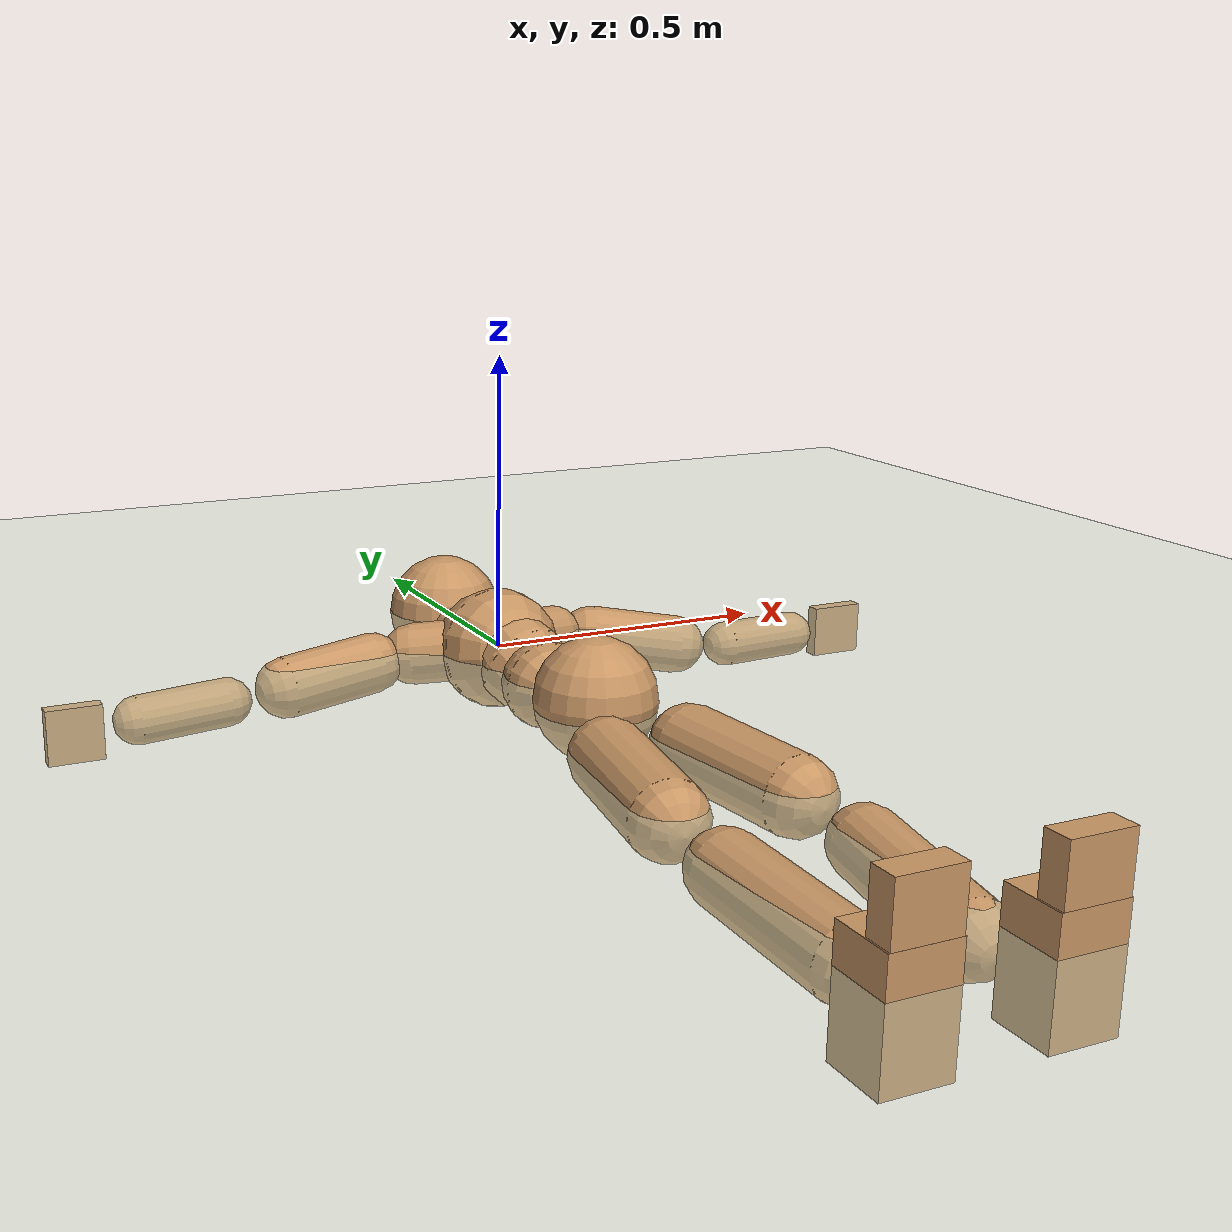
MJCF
<mujoco model="humanoid">
  <option timestep=".0001">
    <flag energy="enable"/>
  </option>
  <compiler coordinate="local"/>
  <default>
    <joint damping="0.0" armature="0.01" stiffness="0.0" limited="true"/>
    <geom conaffinity="1" condim="3" contype="7" margin="0.001" rgba="0.8 0.6 .4 1"/>
  </default>
  <asset>
    <texture type="skybox" builtin="gradient" rgb1=".4 .5 .6" rgb2="0 0 0" width="100" height="100"/>
    <texture builtin="flat" height="1278" mark="cross" markrgb="1 1 1" name="texgeom" random="0.01" rgb1="0.8 0.6 0.4" rgb2="0.8 0.6 0.4" type="cube" width="127"/>
    <texture builtin="checker" height="100" name="texplane" rgb1="0 0 0" rgb2="0.8 0.8 0.8" type="2d" width="100"/>
    <material name="MatPlane" reflectance="0.5" shininess="1" specular="1" texrepeat="60 60" texture="texplane"/>
    <material name="geom" texture="texgeom" texuniform="true"/>
  </asset>
  <worldbody>
    <light cutoff="100" diffuse="1 1 1" dir="-0 0 -1.3" directional="true" exponent="1" pos="0 0 1.3" specular=".1 .1 .1"/>
    <geom conaffinity="1" condim="3" name="floor" pos="0 0 0" rgba="0.8 0.9 0.8 1" size="100 100 .2" type="plane" material="MatPlane"/>
    <body name="Pelvis" pos="0.0031 -0.3514 0.012">
      <freejoint name="Pelvis"/>
      <geom type="sphere" contype="1" conaffinity="1" density="4629.6296296296305" size="0.0985" pos="0.0000 0.0000 0.0000" name="Pelvis"/>
      <body name="L_Hip" pos="0.0582 -0.0928 -0.026">
        <joint name="L_Hip_x" type="hinge" pos="0 0 0" axis="1 0 0" user="250 2.5 1 500 10 2" armature="0.01" range="-90.0000 90.0000" damping="0" stiffness="0"/>
        <joint name="L_Hip_y" type="hinge" pos="0 0 0" axis="0 1 0" user="250 2.5 1 500 10 2" armature="0.01" range="-90.0000 90.0000" damping="0" stiffness="0"/>
        <joint name="L_Hip_z" type="hinge" pos="0 0 0" axis="0 0 1" user="250 2.5 1 500 10 2" armature="0.01" range="-90.0000 90.0000" damping="0" stiffness="0"/>
        <geom type="capsule" contype="1" conaffinity="1" density="2040.816327" fromto="0.0109 -0.0758 -0.0019 0.0438 -0.3030 -0.0075" size="0.0605"/>
        <body name="L_Knee" pos="0.0547 -0.3788 -0.0094">
          <joint name="L_Knee_x" type="hinge" pos="0 0 0" axis="1 0 0" user="250 2.5 1 500 10 2" armature="0.01" range="-180.0000 180.0000" damping="0" stiffness="0"/>
          <joint name="L_Knee_y" type="hinge" pos="0 0 0" axis="0 1 0" user="250 2.5 1 500 10 2" armature="0.01" range="-5.6250 5.6250" damping="0" stiffness="0"/>
          <joint name="L_Knee_z" type="hinge" pos="0 0 0" axis="0 0 1" user="250 2.5 1 500 10 2" armature="0.01" range="-5.6250 5.6250" damping="0" stiffness="0"/>
          <geom type="capsule" contype="1" conaffinity="1" density="1234.567901" fromto="-0.0087 -0.0806 -0.0064 -0.0348 -0.3224 -0.0255" size="0.0533"/>
          <body name="L_Ankle" pos="-0.0435 -0.4031 -0.0319">
            <joint name="L_Ankle_x" type="hinge" pos="0 0 0" axis="1 0 0" user="150 2.5 1 500 10 2" armature="0.01" range="-90.0000 90.0000" damping="0" stiffness="0"/>
            <joint name="L_Ankle_y" type="hinge" pos="0 0 0" axis="0 1 0" user="150 2.5 1 500 10 2" armature="0.01" range="-90.0000 90.0000" damping="0" stiffness="0"/>
            <joint name="L_Ankle_z" type="hinge" pos="0 0 0" axis="0 0 1" user="150 2.5 1 500 10 2" armature="0.01" range="-90.0000 90.0000" damping="0" stiffness="0"/>
            <geom type="box" density="445.819015" pos="0.0407 -0.0287 0.0232" size="0.0498 0.0464 0.0857" quat="1.0000 0.0000 0.0000 0.0000"/>
            <body name="L_Toe" pos="0.0473 -0.058 0.1182">
              <joint name="L_Toe_x" type="hinge" pos="0 0 0" axis="1 0 0" user="150 1 1 500 1 1" armature="0.01" range="-90.0000 90.0000" damping="0" stiffness="0"/>
              <joint name="L_Toe_y" type="hinge" pos="0 0 0" axis="0 1 0" user="150 1 1 500 1 1" armature="0.01" range="-45.0000 45.0000" damping="0" stiffness="0"/>
              <joint name="L_Toe_z" type="hinge" pos="0 0 0" axis="0 0 1" user="150 1 1 500 1 1" armature="0.01" range="-45.0000 45.0000" damping="0" stiffness="0"/>
              <geom type="box" density="421.767577" pos="-0.0065 0.0034 0.0256" size="0.0478 0.0205 0.0495" quat="1.0000 0.0000 0.0000 0.0000"/>
            </body>
          </body>
        </body>
      </body>
      <body name="R_Hip" pos="-0.0633 -0.1039 -0.0213">
        <joint name="R_Hip_x" type="hinge" pos="0 0 0" axis="1 0 0" user="250 2.5 1 500 10 2" armature="0.01" range="-90.0000 90.0000" damping="0" stiffness="0"/>
        <joint name="R_Hip_y" type="hinge" pos="0 0 0" axis="0 1 0" user="250 2.5 1 500 10 2" armature="0.01" range="-90.0000 90.0000" damping="0" stiffness="0"/>
        <joint name="R_Hip_z" type="hinge" pos="0 0 0" axis="0 0 1" user="250 2.5 1 500 10 2" armature="0.01" range="-90.0000 90.0000" damping="0" stiffness="0"/>
        <geom type="capsule" contype="1" conaffinity="1" density="2040.816327" fromto="-0.0088 -0.0725 -0.0034 -0.0354 -0.2899 -0.0135" size="0.0598"/>
        <body name="R_Knee" pos="-0.0442 -0.3624 -0.0168">
          <joint name="R_Knee_x" type="hinge" pos="0 0 0" axis="1 0 0" user="250 2.5 1 500 10 2" armature="0.01" range="-180.0000 180.0000" damping="0" stiffness="0"/>
          <joint name="R_Knee_y" type="hinge" pos="0 0 0" axis="0 1 0" user="250 2.5 1 500 10 2" armature="0.01" range="-5.6250 5.6250" damping="0" stiffness="0"/>
          <joint name="R_Knee_z" type="hinge" pos="0 0 0" axis="0 0 1" user="250 2.5 1 500 10 2" armature="0.01" range="-5.6250 5.6250" damping="0" stiffness="0"/>
          <geom type="capsule" contype="1" conaffinity="1" density="1234.567901" fromto="0.0031 -0.0821 -0.0040 0.0123 -0.3286 -0.0162" size="0.0551"/>
          <body name="R_Ankle" pos="0.0154 -0.4107 -0.0202">
            <joint name="R_Ankle_x" type="hinge" pos="0 0 0" axis="1 0 0" user="150 1 1 500 10 2" armature="0.01" range="-90.0000 90.0000" damping="0" stiffness="0"/>
            <joint name="R_Ankle_y" type="hinge" pos="0 0 0" axis="0 1 0" user="150 1 1 500 10 2" armature="0.01" range="-90.0000 90.0000" damping="0" stiffness="0"/>
            <joint name="R_Ankle_z" type="hinge" pos="0 0 0" axis="0 0 1" user="150 1 1 500 10 2" armature="0.01" range="-90.0000 90.0000" damping="0" stiffness="0"/>
            <geom type="box" density="445.807856" pos="-0.0243 -0.0263 0.0142" size="0.0498 0.0464 0.0857" quat="1.0000 0.0000 0.0000 0.0000"/>
            <body name="R_Toe" pos="-0.0388 -0.0583 0.119">
              <joint name="R_Toe_x" type="hinge" pos="0 0 0" axis="1 0 0" user="150 1 1 500 1 1" armature="0.01" range="-90.0000 90.0000" damping="0" stiffness="0"/>
              <joint name="R_Toe_y" type="hinge" pos="0 0 0" axis="0 1 0" user="150 1 1 500 1 1" armature="0.01" range="-45.0000 45.0000" damping="0" stiffness="0"/>
              <joint name="R_Toe_z" type="hinge" pos="0 0 0" axis="0 0 1" user="150 1 1 500 1 1" armature="0.01" range="-45.0000 45.0000" damping="0" stiffness="0"/>
              <geom type="box" density="421.7641" pos="0.0145 0.0062 0.0158" size="0.0478 0.0205 0.0495" quat="1.0000 0.0000 0.0000 0.0000"/>
            </body>
          </body>
        </body>
      </body>
      <body name="Torso" pos="-0.0028 0.1099 -0.0276">
        <joint name="Torso_x" type="hinge" pos="0 0 0" axis="1 0 0" user="500 5 1 500 10 2" armature="0.01" range="-60.0000 60.0000" damping="0" stiffness="0"/>
        <joint name="Torso_y" type="hinge" pos="0 0 0" axis="0 1 0" user="500 5 1 500 10 2" armature="0.01" range="-60.0000 60.0000" damping="0" stiffness="0"/>
        <joint name="Torso_z" type="hinge" pos="0 0 0" axis="0 0 1" user="500 5 1 500 10 2" armature="0.01" range="-60.0000 60.0000" damping="0" stiffness="0"/>
        <geom type="capsule" contype="1" conaffinity="1" density="2040.816327" fromto="0.0043 0.0593 -0.0027 0.0052 0.0725 -0.0033" size="0.0719"/>
        <body name="Spine" pos="0.0094 0.1319 -0.0059">
          <joint name="Spine_x" type="hinge" pos="0 0 0" axis="1 0 0" user="500 5 1 500 10 2" armature="0.01" range="-60.0000 60.0000" damping="0" stiffness="0"/>
          <joint name="Spine_y" type="hinge" pos="0 0 0" axis="0 1 0" user="500 5 1 500 10 2" armature="0.01" range="-60.0000 60.0000" damping="0" stiffness="0"/>
          <joint name="Spine_z" type="hinge" pos="0 0 0" axis="0 0 1" user="500 5 1 500 10 2" armature="0.01" range="-60.0000 60.0000" damping="0" stiffness="0"/>
          <geom type="capsule" contype="1" conaffinity="1" density="2040.816327" fromto="-0.0051 0.0235 0.0128 -0.0062 0.0287 0.0156" size="0.076"/>
          <body name="Chest" pos="-0.0113 0.0522 0.0284">
            <joint name="Chest_x" type="hinge" pos="0 0 0" axis="1 0 0" user="500 5 1 500 10 2" armature="0.01" range="-60.0000 60.0000" damping="0" stiffness="0"/>
            <joint name="Chest_y" type="hinge" pos="0 0 0" axis="0 1 0" user="500 5 1 500 10 2" armature="0.01" range="-60.0000 60.0000" damping="0" stiffness="0"/>
            <joint name="Chest_z" type="hinge" pos="0 0 0" axis="0 0 1" user="500 5 1 500 10 2" armature="0.01" range="-60.0000 60.0000" damping="0" stiffness="0"/>
            <geom type="capsule" contype="1" conaffinity="1" density="2040.816327" fromto="-0.0020 0.0502 -0.0078 -0.0025 0.0613 -0.0096" size="0.1028"/>
            <body name="Neck" pos="-0.0122 0.1652 -0.0316">
              <joint name="Neck_x" type="hinge" pos="0 0 0" axis="1 0 0" user="150 1 1 250 50 4" armature="0.01" range="-180.0000 180.0000" damping="0" stiffness="0"/>
              <joint name="Neck_y" type="hinge" pos="0 0 0" axis="0 1 0" user="150 1 1 250 50 4" armature="0.01" range="-180.0000 180.0000" damping="0" stiffness="0"/>
              <joint name="Neck_z" type="hinge" pos="0 0 0" axis="0 0 1" user="150 1 1 250 50 4" armature="0.01" range="-180.0000 180.0000" damping="0" stiffness="0"/>
              <geom type="capsule" contype="1" conaffinity="1" density="1000" fromto="0.0050 0.0321 0.0041 0.0198 0.1284 0.0166" size="0.0419"/>
              <body name="Head" pos="0.0248 0.1605 0.0207">
                <joint name="Head_x" type="hinge" pos="0 0 0" axis="1 0 0" user="150 1 1 250 50 4" armature="0.01" range="-90.0000 90.0000" damping="0" stiffness="0"/>
                <joint name="Head_y" type="hinge" pos="0 0 0" axis="0 1 0" user="150 1 1 250 50 4" armature="0.01" range="-90.0000 90.0000" damping="0" stiffness="0"/>
                <joint name="Head_z" type="hinge" pos="0 0 0" axis="0 0 1" user="150 1 1 250 50 4" armature="0.01" range="-90.0000 90.0000" damping="0" stiffness="0"/>
                <geom type="sphere" contype="1" conaffinity="1" density="1000" size="0.1011" pos="0.0000 0.0000 0.0000" name="Head"/>
              </body>
            </body>
            <body name="L_Thorax" pos="0.0464 0.0849 -0.0072">
              <joint name="L_Thorax_x" type="hinge" pos="0 0 0" axis="1 0 0" user="200 2 1 500 50 4" armature="0.01" range="-180.0000 180.0000" damping="0" stiffness="0"/>
              <joint name="L_Thorax_y" type="hinge" pos="0 0 0" axis="0 1 0" user="200 2 1 500 50 4" armature="0.01" range="-180.0000 180.0000" damping="0" stiffness="0"/>
              <joint name="L_Thorax_z" type="hinge" pos="0 0 0" axis="0 0 1" user="200 2 1 500 50 4" armature="0.01" range="-180.0000 180.0000" damping="0" stiffness="0"/>
              <geom type="capsule" contype="1" conaffinity="1" density="1000" fromto="0.0238 0.0115 -0.0031 0.0954 0.0462 -0.0124" size="0.0488"/>
              <body name="L_Shoulder" pos="0.1192 0.0577 -0.0155">
                <joint name="L_Shoulder_x" type="hinge" pos="0 0 0" axis="1 0 0" user="200 2 1 500 50 4" armature="0.01" range="-180.0000 180.0000" damping="0" stiffness="0"/>
                <joint name="L_Shoulder_y" type="hinge" pos="0 0 0" axis="0 1 0" user="200 2 1 500 50 4" armature="0.01" range="-180.0000 180.0000" damping="0" stiffness="0"/>
                <joint name="L_Shoulder_z" type="hinge" pos="0 0 0" axis="0 0 1" user="200 2 1 500 50 4" armature="0.01" range="-180.0000 180.0000" damping="0" stiffness="0"/>
                <geom type="capsule" contype="1" conaffinity="1" density="1000" fromto="0.0508 -0.0144 -0.0085 0.2033 -0.0577 -0.0340" size="0.0522"/>
                <body name="L_Elbow" pos="0.2541 -0.0722 -0.0425">
                  <joint name="L_Elbow_x" type="hinge" pos="0 0 0" axis="1 0 0" user="150 1 1 150 10 2" armature="0.01" range="-720.0000 720.0000" damping="0" stiffness="0"/>
                  <joint name="L_Elbow_y" type="hinge" pos="0 0 0" axis="0 1 0" user="150 1 1 150 10 2" armature="0.01" range="-720.0000 720.0000" damping="0" stiffness="0"/>
                  <joint name="L_Elbow_z" type="hinge" pos="0 0 0" axis="0 0 1" user="150 1 1 150 10 2" armature="0.01" range="-720.0000 720.0000" damping="0" stiffness="0"/>
                  <geom type="capsule" contype="1" conaffinity="1" density="1000" fromto="0.0504 0.0046 -0.0005 0.2016 0.0186 -0.0020" size="0.0401"/>
                  <body name="L_Wrist" pos="0.252 0.0232 -0.0025">
                    <joint name="L_Wrist_x" type="hinge" pos="0 0 0" axis="1 0 0" user="100 1 1 150 1 1" armature="0.01" range="-180.0000 180.0000" damping="0" stiffness="0"/>
                    <joint name="L_Wrist_y" type="hinge" pos="0 0 0" axis="0 1 0" user="100 1 1 150 1 1" armature="0.01" range="-180.0000 180.0000" damping="0" stiffness="0"/>
                    <joint name="L_Wrist_z" type="hinge" pos="0 0 0" axis="0 0 1" user="100 1 1 150 1 1" armature="0.01" range="-180.0000 180.0000" damping="0" stiffness="0"/>
                    <geom type="box" density="1198.335963" pos="0.0523 -0.0013 -0.0031" size="0.0484 0.0122 0.046" quat="1.0000 0.0000 0.0000 0.0000"/>
                  </body>
                </body>
              </body>
            </body>
            <body name="R_Thorax" pos="-0.0477 0.0843 -0.0134">
              <joint name="R_Thorax_x" type="hinge" pos="0 0 0" axis="1 0 0" user="200 2 1 150 10 2" armature="0.01" range="-180.0000 180.0000" damping="0" stiffness="0"/>
              <joint name="R_Thorax_y" type="hinge" pos="0 0 0" axis="0 1 0" user="200 2 1 150 10 2" armature="0.01" range="-180.0000 180.0000" damping="0" stiffness="0"/>
              <joint name="R_Thorax_z" type="hinge" pos="0 0 0" axis="0 0 1" user="200 2 1 150 10 2" armature="0.01" range="-180.0000 180.0000" damping="0" stiffness="0"/>
              <geom type="capsule" contype="1" conaffinity="1" density="1000" fromto="-0.0205 0.0107 -0.0025 -0.0821 0.0428 -0.0101" size="0.0536"/>
              <body name="R_Shoulder" pos="-0.1026 0.0535 -0.0127">
                <joint name="R_Shoulder_x" type="hinge" pos="0 0 0" axis="1 0 0" user="200 2 1 250 10 2" armature="0.01" range="-180.0000 180.0000" damping="0" stiffness="0"/>
                <joint name="R_Shoulder_y" type="hinge" pos="0 0 0" axis="0 1 0" user="200 2 1 250 10 2" armature="0.01" range="-180.0000 180.0000" damping="0" stiffness="0"/>
                <joint name="R_Shoulder_z" type="hinge" pos="0 0 0" axis="0 0 1" user="200 2 1 250 10 2" armature="0.01" range="-180.0000 180.0000" damping="0" stiffness="0"/>
                <geom type="capsule" contype="1" conaffinity="1" density="1000" fromto="-0.0542 -0.0073 -0.0053 -0.2169 -0.0292 -0.0212" size="0.0521"/>
                <body name="R_Elbow" pos="-0.2711 -0.0365 -0.0265">
                  <joint name="R_Elbow_x" type="hinge" pos="0 0 0" axis="1 0 0" user="150 1 1 150 10 2" armature="0.01" range="-720.0000 720.0000" damping="0" stiffness="0"/>
                  <joint name="R_Elbow_y" type="hinge" pos="0 0 0" axis="0 1 0" user="150 1 1 150 10 2" armature="0.01" range="-720.0000 720.0000" damping="0" stiffness="0"/>
                  <joint name="R_Elbow_z" type="hinge" pos="0 0 0" axis="0 0 1" user="150 1 1 150 10 2" armature="0.01" range="-720.0000 720.0000" damping="0" stiffness="0"/>
                  <geom type="capsule" contype="1" conaffinity="1" density="1000" fromto="-0.0499 -0.0009 -0.0031 -0.1994 -0.0036 -0.0123" size="0.0404"/>
                  <body name="R_Wrist" pos="-0.2493 -0.0045 -0.0153">
                    <joint name="R_Wrist_x" type="hinge" pos="0 0 0" axis="1 0 0" user="100 1 1 150 1 1" armature="0.01" range="-180.0000 180.0000" damping="0" stiffness="0"/>
                    <joint name="R_Wrist_y" type="hinge" pos="0 0 0" axis="0 1 0" user="100 1 1 150 1 1" armature="0.01" range="-180.0000 180.0000" damping="0" stiffness="0"/>
                    <joint name="R_Wrist_z" type="hinge" pos="0 0 0" axis="0 0 1" user="100 1 1 150 1 1" armature="0.01" range="-180.0000 180.0000" damping="0" stiffness="0"/>
                    <geom type="box" density="1230.822844" pos="-0.0537 -0.0044 -0.0029" size="0.0454 0.0122 0.046" quat="1.0000 0.0000 0.0000 0.0000"/>
                  </body>
                </body>
              </body>
            </body>
          </body>
        </body>
      </body>
    </body>
  </worldbody>
  <actuator>
    <motor name="L_Hip_x" joint="L_Hip_x" gear="1"/>
    <motor name="L_Hip_y" joint="L_Hip_y" gear="1"/>
    <motor name="L_Hip_z" joint="L_Hip_z" gear="1"/>
    <motor name="L_Knee_x" joint="L_Knee_x" gear="1"/>
    <motor name="L_Knee_y" joint="L_Knee_y" gear="1"/>
    <motor name="L_Knee_z" joint="L_Knee_z" gear="1"/>
    <motor name="L_Ankle_x" joint="L_Ankle_x" gear="1"/>
    <motor name="L_Ankle_y" joint="L_Ankle_y" gear="1"/>
    <motor name="L_Ankle_z" joint="L_Ankle_z" gear="1"/>
    <motor name="L_Toe_x" joint="L_Toe_x" gear="1"/>
    <motor name="L_Toe_y" joint="L_Toe_y" gear="1"/>
    <motor name="L_Toe_z" joint="L_Toe_z" gear="1"/>
    <motor name="R_Hip_x" joint="R_Hip_x" gear="1"/>
    <motor name="R_Hip_y" joint="R_Hip_y" gear="1"/>
    <motor name="R_Hip_z" joint="R_Hip_z" gear="1"/>
    <motor name="R_Knee_x" joint="R_Knee_x" gear="1"/>
    <motor name="R_Knee_y" joint="R_Knee_y" gear="1"/>
    <motor name="R_Knee_z" joint="R_Knee_z" gear="1"/>
    <motor name="R_Ankle_x" joint="R_Ankle_x" gear="1"/>
    <motor name="R_Ankle_y" joint="R_Ankle_y" gear="1"/>
    <motor name="R_Ankle_z" joint="R_Ankle_z" gear="1"/>
    <motor name="R_Toe_x" joint="R_Toe_x" gear="1"/>
    <motor name="R_Toe_y" joint="R_Toe_y" gear="1"/>
    <motor name="R_Toe_z" joint="R_Toe_z" gear="1"/>
    <motor name="Torso_x" joint="Torso_x" gear="1"/>
    <motor name="Torso_y" joint="Torso_y" gear="1"/>
    <motor name="Torso_z" joint="Torso_z" gear="1"/>
    <motor name="Spine_x" joint="Spine_x" gear="1"/>
    <motor name="Spine_y" joint="Spine_y" gear="1"/>
    <motor name="Spine_z" joint="Spine_z" gear="1"/>
    <motor name="Chest_x" joint="Chest_x" gear="1"/>
    <motor name="Chest_y" joint="Chest_y" gear="1"/>
    <motor name="Chest_z" joint="Chest_z" gear="1"/>
    <motor name="Neck_x" joint="Neck_x" gear="1"/>
    <motor name="Neck_y" joint="Neck_y" gear="1"/>
    <motor name="Neck_z" joint="Neck_z" gear="1"/>
    <motor name="Head_x" joint="Head_x" gear="1"/>
    <motor name="Head_y" joint="Head_y" gear="1"/>
    <motor name="Head_z" joint="Head_z" gear="1"/>
    <motor name="L_Thorax_x" joint="L_Thorax_x" gear="1"/>
    <motor name="L_Thorax_y" joint="L_Thorax_y" gear="1"/>
    <motor name="L_Thorax_z" joint="L_Thorax_z" gear="1"/>
    <motor name="L_Shoulder_x" joint="L_Shoulder_x" gear="1"/>
    <motor name="L_Shoulder_y" joint="L_Shoulder_y" gear="1"/>
    <motor name="L_Shoulder_z" joint="L_Shoulder_z" gear="1"/>
    <motor name="L_Elbow_x" joint="L_Elbow_x" gear="1"/>
    <motor name="L_Elbow_y" joint="L_Elbow_y" gear="1"/>
    <motor name="L_Elbow_z" joint="L_Elbow_z" gear="1"/>
    <motor name="L_Wrist_x" joint="L_Wrist_x" gear="1"/>
    <motor name="L_Wrist_y" joint="L_Wrist_y" gear="1"/>
    <motor name="L_Wrist_z" joint="L_Wrist_z" gear="1"/>
    <motor name="R_Thorax_x" joint="R_Thorax_x" gear="1"/>
    <motor name="R_Thorax_y" joint="R_Thorax_y" gear="1"/>
    <motor name="R_Thorax_z" joint="R_Thorax_z" gear="1"/>
    <motor name="R_Shoulder_x" joint="R_Shoulder_x" gear="1"/>
    <motor name="R_Shoulder_y" joint="R_Shoulder_y" gear="1"/>
    <motor name="R_Shoulder_z" joint="R_Shoulder_z" gear="1"/>
    <motor name="R_Elbow_x" joint="R_Elbow_x" gear="1"/>
    <motor name="R_Elbow_y" joint="R_Elbow_y" gear="1"/>
    <motor name="R_Elbow_z" joint="R_Elbow_z" gear="1"/>
    <motor name="R_Wrist_x" joint="R_Wrist_x" gear="1"/>
    <motor name="R_Wrist_y" joint="R_Wrist_y" gear="1"/>
    <motor name="R_Wrist_z" joint="R_Wrist_z" gear="1"/>
  </actuator>
  <contact>
    <exclude body1="Torso" body2="Chest"/>
    <exclude body1="Head" body2="Chest"/>
    <exclude body1="R_Knee" body2="R_Toe"/>
    <exclude body1="R_Knee" body2="L_Ankle"/>
    <exclude body1="R_Knee" body2="L_Toe"/>
    <exclude body1="L_Knee" body2="L_Toe"/>
    <exclude body1="L_Knee" body2="R_Ankle"/>
    <exclude body1="L_Knee" body2="R_Toe"/>
    <exclude body1="L_Shoulder" body2="Chest"/>
    <exclude body1="R_Shoulder" body2="Chest"/>
  </contact>
  <sensor/>
  <size njmax="700" nconmax="700"/>
</mujoco>
